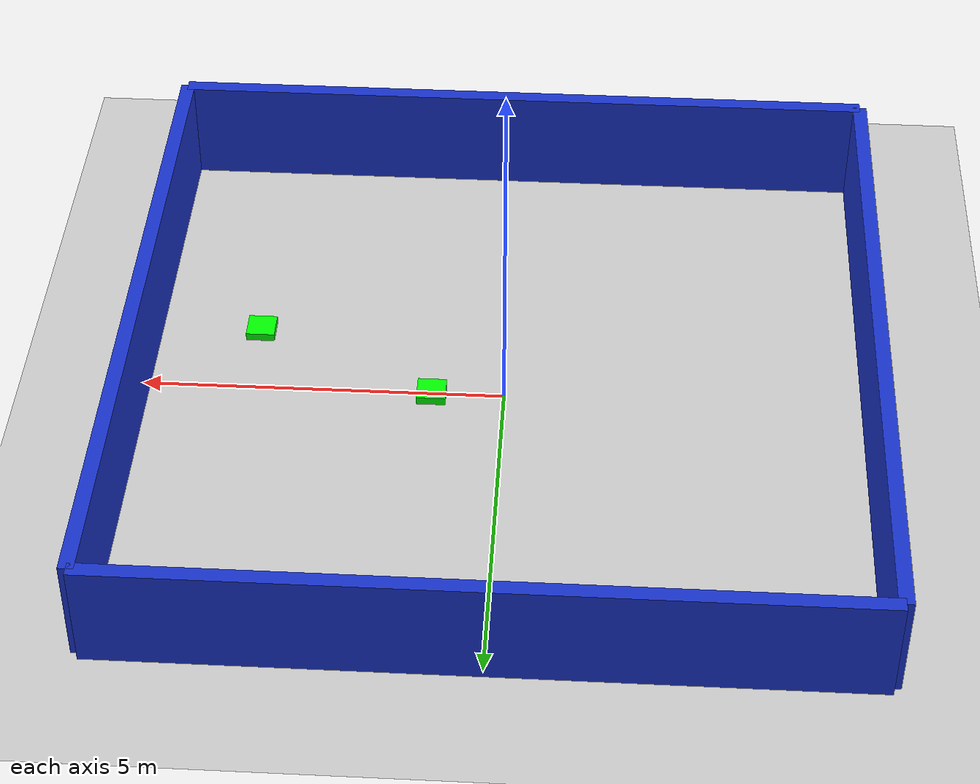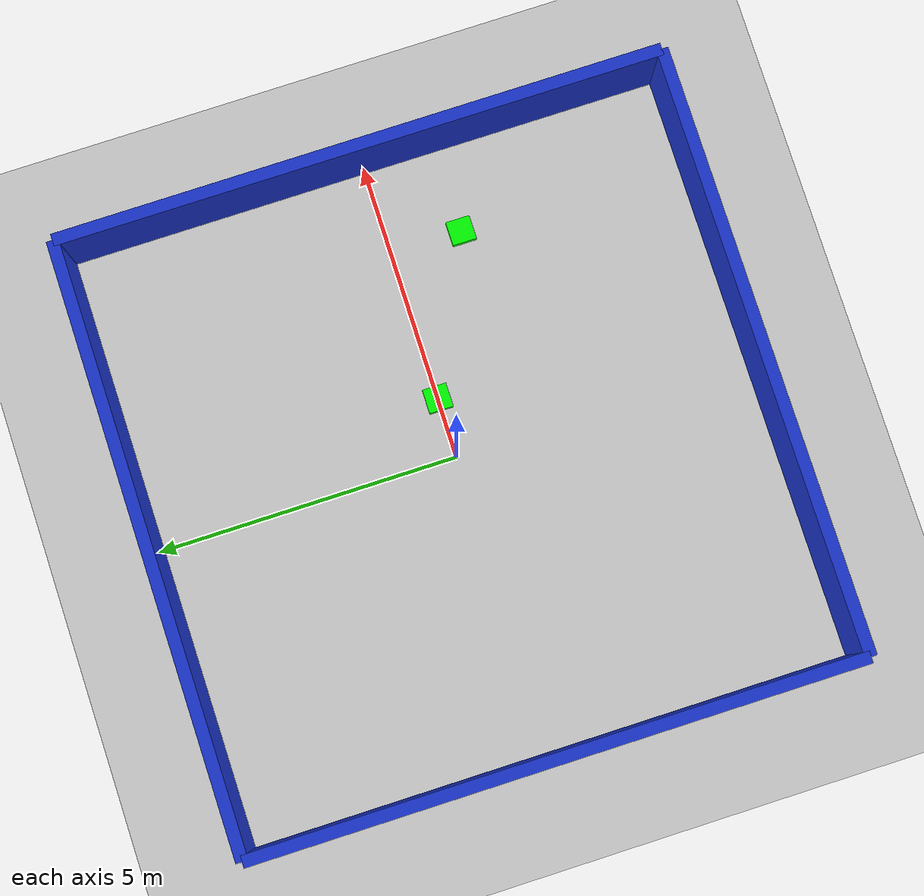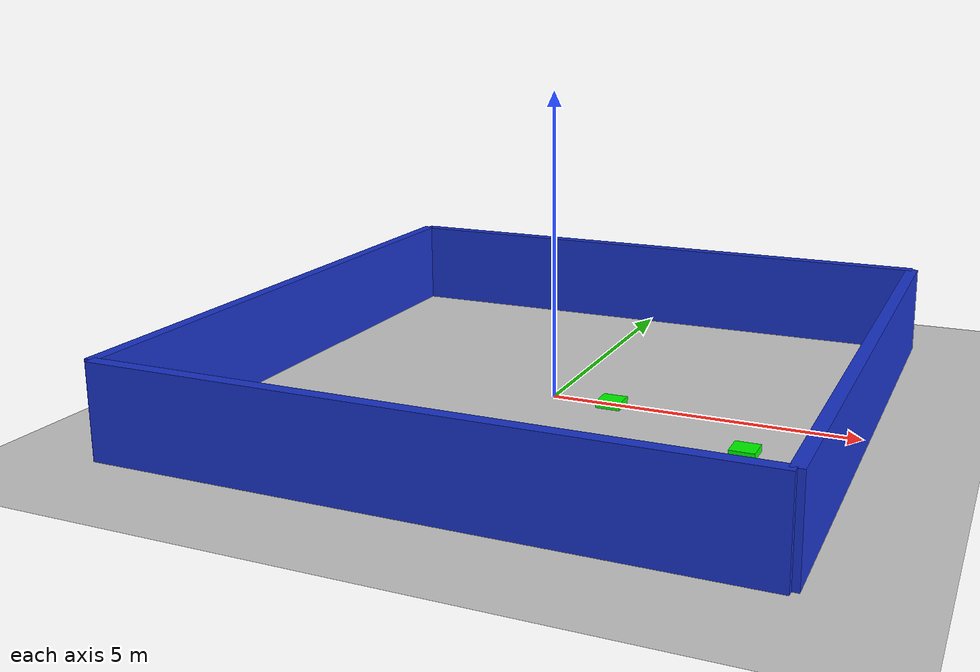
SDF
<?xml version="1.0"?>
<sdf version="1.9">
  <world name="empty_world">
    <physics name="1ms" type="ignored">
      <max_step_size>0.001</max_step_size>
      <real_time_factor>1.0</real_time_factor>
    </physics>
    <light type="directional" name="sun">
      <cast_shadows>true</cast_shadows>
      <pose>0 0 10 0 0 0</pose>
      <diffuse>0.8 0.8 0.8 1</diffuse>
      <specular>0.2 0.2 0.2 1</specular>
      <attenuation>
        <range>1000</range>
        <constant>0.9</constant>
        <linear>0.01</linear>
        <quadratic>0.001</quadratic>
      </attenuation>
      <direction>-0.5 0.1 -0.9</direction>
    </light>
    <gravity>0 0 -9.8000000000000007</gravity>
    <scene>
      <ambient>0.400000006 0.400000006 0.400000006 1</ambient>
      <background>0.699999988 0.699999988 0.699999988 1</background>
      <shadows>true</shadows>
    </scene>
    <!-- Ground plane -->
    <model name="ground_plane">
      <static>true</static>
      <link name="link">
        <collision name="collision">
          <geometry>
            <plane>
              <normal>0 0 1</normal>
              <size>100 100</size>
            </plane>
          </geometry>
          <surface>
            <friction>
              <ode>
                <mu>50</mu>
              </ode>
            </friction>
            <bounce />
            <contact />
          </surface>
        </collision>
        <visual name="visual">
          <geometry>
            <plane>
              <normal>0 0 1</normal>
              <size>100 100</size>
            </plane>
          </geometry>
          <material>
            <ambient>0.8 0.8 0.8 1</ambient>
            <diffuse>0.8 0.8 0.8 1</diffuse>
            <specular>0.8 0.8 0.8 1</specular>
          </material>
        </visual>
      </link>
    </model>
    <include>
      <uri>model://home_dock</uri>
      <pose>1.0 0.0 0 0 0 0</pose>
    </include>
    <include>
      <uri>model://work_dock</uri>
      <pose>3.5 -1.2 0 0 0 1.57</pose>
    </include>
    <!-- ADDITIONAL WALLS -->
    <model name="wall_test">
      <static>true</static>
      <pose>0 5 0.75 0 0 0</pose>
      <link name="link">
        <collision name="collision">
          <geometry>
            <box>
              <size>10 0.2 1.5</size>
            </box>
          </geometry>
        </collision>
        <visual name="visual">
          <geometry>
            <box>
              <size>10 0.2 1.5</size>
            </box>
          </geometry>
          <material>
            <ambient>0.1 0.2 0.8 1</ambient>
            <diffuse>0.1 0.2 0.8 1</diffuse>
            <specular>0.2 0.2 0.2 1</specular>
          </material>
        </visual>
      </link>
    </model>
    <model name="wall_back">
      <static>true</static>
      <pose>0 -5 0.75 0 0 0</pose>
      <link name="link">
        <collision name="collision">
          <geometry>
            <box>
              <size>10 0.2 1.5</size>
            </box>
          </geometry>
        </collision>
        <visual name="visual">
          <geometry>
            <box>
              <size>10 0.2 1.5</size>
            </box>
          </geometry>
          <material>
            <ambient>0.1 0.2 0.8 1</ambient>
            <diffuse>0.1 0.2 0.8 1</diffuse>
            <specular>0.2 0.2 0.2 1</specular>
          </material>
        </visual>
      </link>
    </model>

    <model name="wall_left">
      <static>true</static>
      <pose>-5 0 0.75 0 0 0</pose>
      <link name="link">
        <collision name="collision">
          <geometry>
            <box>
              <size>0.2 10 1.5</size>
            </box>
          </geometry>
        </collision>
        <visual name="visual">
          <geometry>
            <box>
              <size>0.2 10 1.5</size>
            </box>
          </geometry>
          <material>
            <ambient>0.1 0.2 0.8 1</ambient>
            <diffuse>0.1 0.2 0.8 1</diffuse>
            <specular>0.2 0.2 0.2 1</specular>
          </material>
        </visual>
      </link>
    </model>

    <model name="wall_right">
      <static>true</static>
      <pose>5 0 0.75 0 0 0</pose>
      <link name="link">
        <collision name="collision">
          <geometry>
            <box>
              <size>0.2 10 1.5</size>
            </box>
          </geometry>
        </collision>
        <visual name="visual">
          <geometry>
            <box>
              <size>0.2 10 1.5</size>
            </box>
          </geometry>
          <material>
            <ambient>0.1 0.2 0.8 1</ambient>
            <diffuse>0.1 0.2 0.8 1</diffuse>
            <specular>0.2 0.2 0.2 1</specular>
          </material>
        </visual>
      </link>
    </model>
  </world>
</sdf>

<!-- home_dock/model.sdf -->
<sdf version="1.8">
  <model name="home_dock">
    <static>true</static>

    <!-- Dock frame origin = ideal docking pose -->
    <pose>1.0 0.0 0.0 0 0 0</pose>

    <link name="dock_link">
      <collision name="collision">
        <geometry>
          <box>
            <size>0.4 0.4 0.2</size>
          </box>
        </geometry>
      </collision>

      <visual name="visual">
        <geometry>
          <box>
            <size>0.4 0.4 0.2</size>
          </box>
        </geometry>
        <material>
          <ambient>0 1 0 1</ambient>
          <diffuse>0 1 0 1</diffuse>
        </material>
      </visual>
    </link>
  </model>
</sdf>

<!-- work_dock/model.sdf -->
<sdf version="1.8">
  <model name="work_dock">
    <static>true</static>

    <link name="dock_link">
      <collision name="collision">
        <geometry>
          <box>
            <size>0.4 0.4 0.2</size>
          </box>
        </geometry>
      </collision>

      <visual name="visual">
        <geometry>
          <box>
            <size>0.4 0.4 0.2</size>
          </box>
        </geometry>
        <material>
          <ambient>0 1 0 1</ambient>
          <diffuse>0 1 0 1</diffuse>
        </material>
      </visual>
    </link>
  </model>
</sdf>
